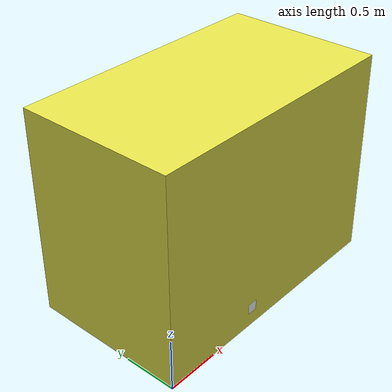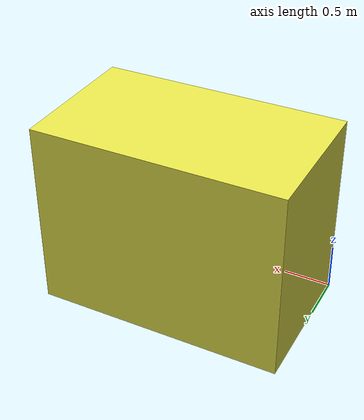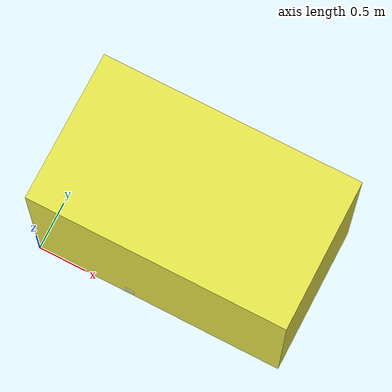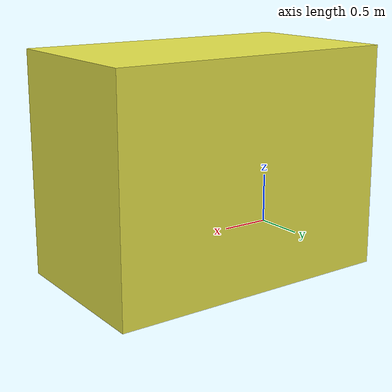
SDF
<?xml version="1.0" ?>
<sdf version="1.5">
  <model name="obstacle_09">
    <static>true</static>
    <link name="link">
      <pose>0 0 0 0 0 0</pose>
      <collision name="collision">
        <geometry>
            <mesh>
              <uri>
                model://obstacle_09/mesh/ostacolo_09.stl
              </uri>
              <scale>
                0.001 0.001 0.001
              </scale>
            </mesh>
        </geometry>
      </collision>
      <visual name="visual">
        <cast_shadows>true</cast_shadows>
        <geometry>
            <mesh>
              <uri>
                model://obstacle_09/mesh/ostacolo_09.stl
              </uri>
              <scale>
                0.001 0.001 0.001
              </scale>
            </mesh>
        </geometry>
        <material> <!-- color yellow -->
          <ambient>0.9098 0.9020 0.2941 1</ambient>
          <diffuse>0.9098 0.9020 0.2941 1</diffuse>
          <specular>0 0 0 0</specular>
          <emissive>0 0 0 1</emissive>
        </material>
      </visual>
    </link>

    <!-- Nuovo link per l'ArUco tag -->
    <link name="aruco_link">
      <pose>1 -0.01 0.2 1.57 0 0</pose> <!-- Posizione relativa all'ostacolo -->
      <visual name="aruco_visual">
        <geometry>
          <plane>
            <size>0.1 0.1</size> <!-- Dimensioni del piano del tag -->
          </plane>
        </geometry>
        <material>
          <diffuse>1 1 1 1</diffuse>
          <specular>0.4 0.4 0.4 1</specular>
          <pbr>
            <metal>
              <albedo_map>model://obstacle_09/aruco-115.png</albedo_map>
            </metal>
          </pbr>
        </material>
      </visual>
    </link>

    <!-- Giunto fisso per collegare l'ArUco all'ostacolo -->
    <joint name="aruco_joint" type="fixed">
      <parent>link</parent>
      <child>aruco_link</child>
    </joint>

  </model>
</sdf>
